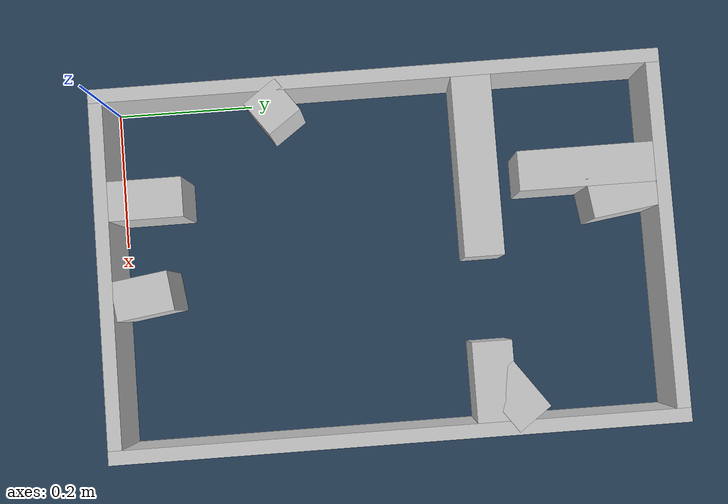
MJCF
<?xml version="1.0" ?>
<mujoco model="generated_real_template">
  <compiler angle="degree"/>
  <option timestep="0.002" integrator="implicitfast" iterations="100" cone="elliptic"/>
  <default>
    <geom density="1"/>
  </default>
  <asset>
    <texture builtin="gradient" height="3072" rgb1="0.3 0.5 0.7" rgb2="0 0 0" type="skybox" width="512"/>
    <texture builtin="checker" height="300" mark="edge" markrgb="0.8 0.8 0.8" name="groundplane" rgb1="0.2 0.3 0.4" rgb2="0.1 0.2 0.3" type="2d" width="300"/>
    <material name="groundplane" reflectance="0.2" texrepeat="5 5" texture="groundplane" texuniform="true"/>
  </asset>
  <worldbody>
    <light dir="0 0 -1" directional="true" pos="0 0 1.5"/>
    <geom name="floor" type="plane" condim="4" friction="0.5 0.005 0.001" material="groundplane" size="0 0 0.05"/>
    <body name="walls">
      <geom name="wall_boundary_left" type="box" condim="4" friction="1.0 0.005 0.0001" rgba="0.8 0.8 0.8 1" pos="-0.010000 0.387500 0.050000" euler="0 0 0.000000" size="0.010000 0.407500 0.050000"/>
      <geom name="wall_boundary_right" type="box" condim="4" friction="1.0 0.005 0.0001" rgba="0.8 0.8 0.8 1" pos="0.500000 0.387500 0.050000" euler="0 0 0.000000" size="0.010000 0.407500 0.050000"/>
      <geom name="wall_boundary_bottom" type="box" condim="4" friction="1.0 0.005 0.0001" rgba="0.8 0.8 0.8 1" pos="0.245000 -0.010000 0.050000" euler="0 0 0.000000" size="0.245000 0.010000 0.050000"/>
      <geom name="wall_boundary_top" type="box" condim="4" friction="1.0 0.005 0.0001" rgba="0.8 0.8 0.8 1" pos="0.245000 0.785000 0.050000" euler="0 0 0.000000" size="0.245000 0.010000 0.050000"/>
      <geom name="wall_inner_1_1" type="box" condim="4" friction="1.0 0.005 0.0001" rgba="0.8 0.8 0.8 1" pos="0.128944 0.525069 0.050000" euler="0 0 0.000000" size="0.128944 0.028500 0.050000"/>
      <geom name="wall_inner_1_2" type="box" condim="4" friction="1.0 0.005 0.0001" rgba="0.8 0.8 0.8 1" pos="0.433547 0.525069 0.050000" euler="0 0 0.000000" size="0.056453 0.028500 0.050000"/>
      <geom name="wall_inner_2_1" type="box" condim="4" friction="1.0 0.005 0.0001" rgba="0.8 0.8 0.8 1" pos="0.181590 0.727385 0.050000" euler="0 0 -81.995135" size="0.048083 0.028500 0.050000"/>
      <geom name="wall_inner_2_2" type="box" condim="4" friction="1.0 0.005 0.0001" rgba="0.8 0.8 0.8 1" pos="0.278177 0.040555 0.050000" euler="0 0 -81.995135" size="0.040954 0.028500 0.050000"/>
      <geom name="wall_inner_3_1" type="box" condim="4" friction="1.0 0.005 0.0001" rgba="0.8 0.8 0.8 1" pos="0.141606 0.052877 0.050000" euler="0 0 90.000000" size="0.052877 0.028500 0.050000"/>
      <geom name="wall_inner_3_2" type="box" condim="4" friction="1.0 0.005 0.0001" rgba="0.8 0.8 0.8 1" pos="0.141606 0.678362 0.050000" euler="0 0 90.000000" size="0.096638 0.028500 0.050000"/>
      <geom name="wall_inner_4_1" type="box" condim="4" friction="1.0 0.005 0.0001" rgba="0.8 0.8 0.8 1" pos="0.456839 0.553680 0.050000" euler="0 0 -144.153351" size="0.040910 0.028500 0.050000"/>
      <geom name="wall_inner_4_2" type="box" condim="4" friction="1.0 0.005 0.0001" rgba="0.8 0.8 0.8 1" pos="0.023395 0.240534 0.050000" euler="0 0 -144.153351" size="0.028862 0.028500 0.050000"/>
    </body>
  </worldbody>
</mujoco>
